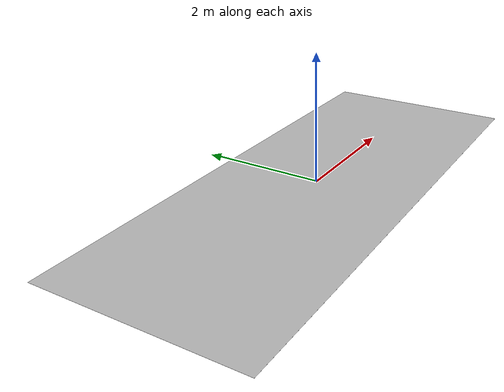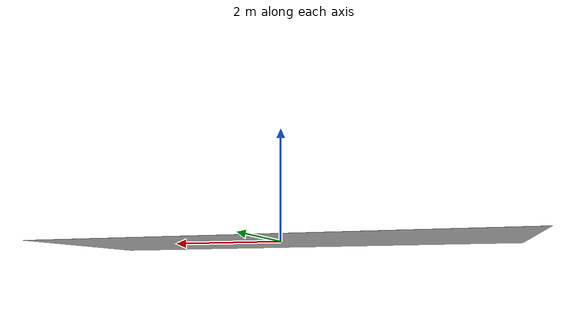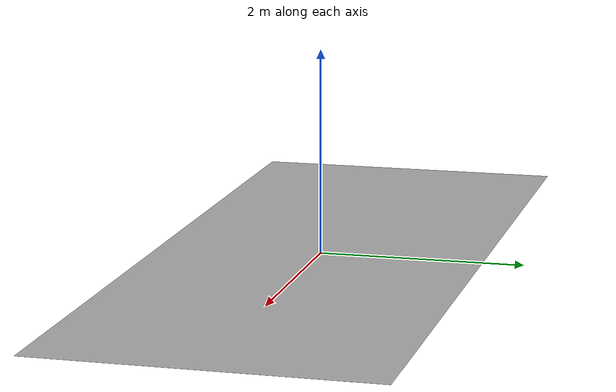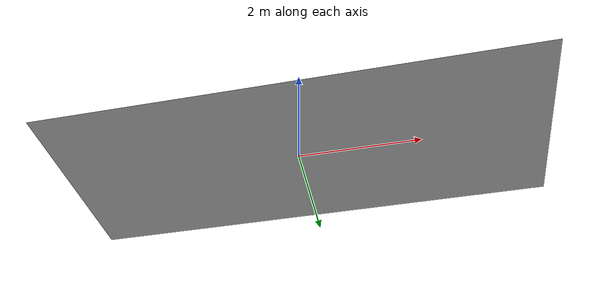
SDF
<?xml version="1.0"?>
<sdf version="1.5">
    <model name="loop_line">
        <static>true</static>
        <link name="loop_link">
            <pose>0 0 1e-3 0 0 0</pose>
            <visual name="loop_texture">
                <cast_shadows>false</cast_shadows>
                <geometry>
                    <box>
                        <size>8.0 3.2 1e-3</size>
                    </box>
                </geometry>
                <material>
                    <script>
                        <uri>model://loop_line/materials/scripts</uri>
                        <uri>model://loop_line/materials/textures</uri>
                        <name>loop_dashed</name>
                    </script>
                </material>
            </visual>
        </link>
    </model>
</sdf>
